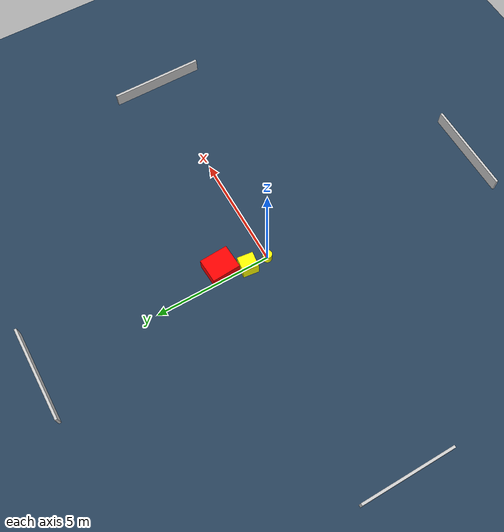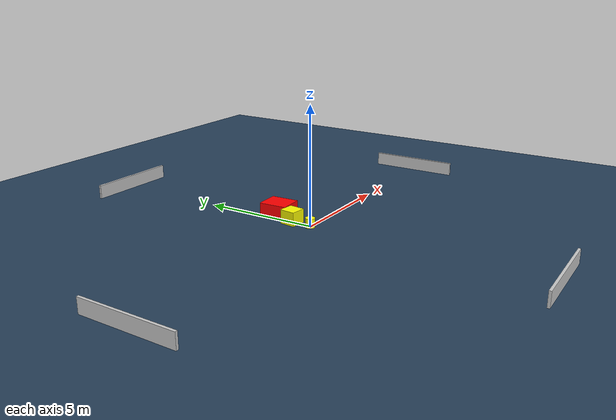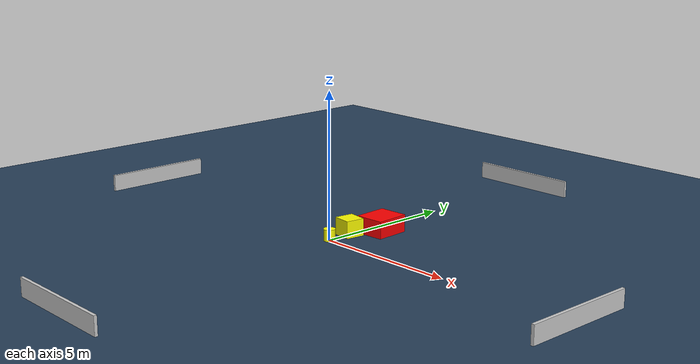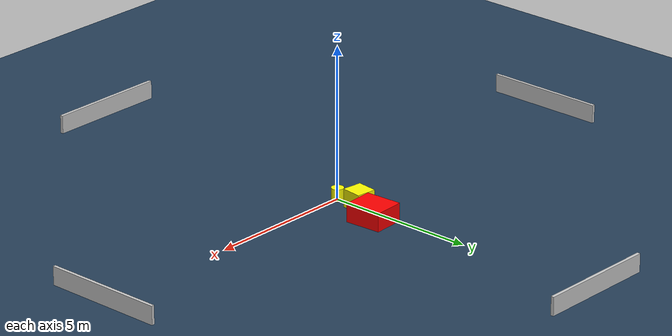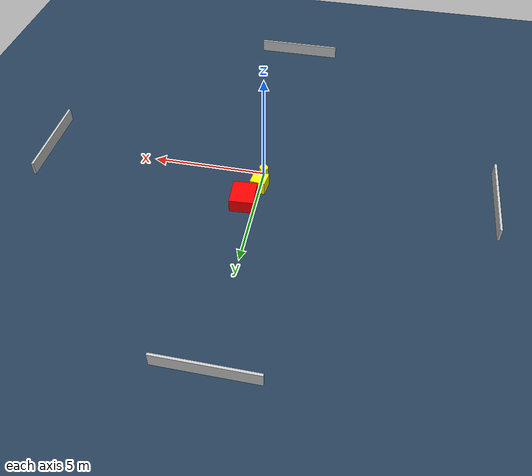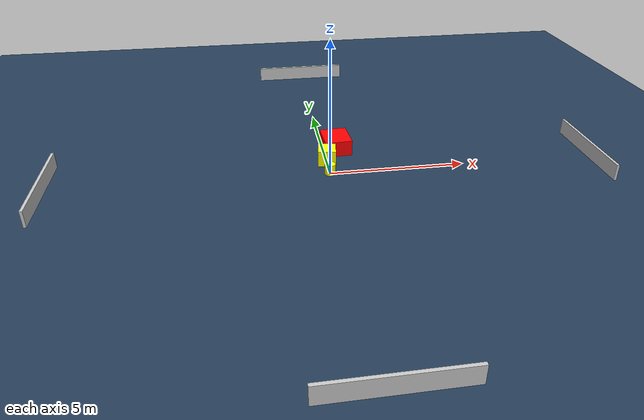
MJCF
<?xml version="1.0" ?>
<mujoco model="generated_environment">
  <option timestep="0.01" integrator="RK4" cone="elliptic"/>
  <default>
    <geom density="1"/>
  </default>
  <asset>
    <texture builtin="gradient" height="3072" name="skybox" rgb1="0.3 0.5 0.7" rgb2="0 0 0" type="skybox" width="512"/>
    <texture builtin="checker" height="300" name="groundplane" rgb1="0.2 0.3 0.4" rgb2="0.1 0.2 0.3" type="2d" width="300"/>
    <material name="groundplane" reflectance="0.2" texrepeat="5 5" texture="groundplane"/>
  </asset>
  <worldbody>
    <light dir="0 0 -1" directional="true" pos="0 0 1.5"/>
    <geom condim="3" friction="0.5 0.005 0.001" material="groundplane" name="floor" pos="0 0 0" size="0 0 0.05" type="plane"/>
    <body name="walls">
      <geom name="wall_1" condim="4" pos="-10.0 0.0 0.3" rgba="0.800000011920929 0.800000011920929 0.800000011920929 1.0" size="0.05 2.0 0.3" type="box"/>
      <geom name="wall_2" condim="4" pos="10.0 0.0 0.3" rgba="0.800000011920929 0.800000011920929 0.800000011920929 1.0" size="0.05 2.0 0.3" type="box"/>
      <geom name="wall_3" condim="4" pos="0.0 -10.0 0.3" rgba="0.800000011920929 0.800000011920929 0.800000011920929 1.0" size="2.0 0.05 0.3" type="box"/>
      <geom name="wall_4" condim="4" pos="0.0 10.0 0.3" rgba="0.800000011920929 0.800000011920929 0.800000011920929 1.0" size="2.0 0.05 0.3" type="box"/>
    </body>
    <body name="robot">
      <joint name="joint_x" type="slide" pos="0 0 0" axis="1 0 0"/>
      <joint name="joint_y" type="slide" pos="0 0 0" axis="0 1 0"/>
      <geom name="robot" type="cylinder" pos="0.0 0.0 0.2" size="0.2 0.2 0.0" mass="5.0" friction="1.0 0.005 0.0001" condim="4" rgba="1.0 1.0 0.0 1.0"/>
    </body>
    <body name="obstacle_1_movable">
      <geom name="obstacle_1_movable" condim="4" pos="0.01214170767576068 0.8891571480291144 0.3" euler="0 0 263.16129108681736" friction="0.0 0.005 0.001" rgba="1.0 1.0 0.0 1.0" size="0.33819807612391656 0.33029837968187914 0.3" type="box" mass="0.1"/>
      <joint type="free"/>
    </body>
    <body name="obstacle_2_static">
      <geom name="obstacle_2_static" condim="4" pos="0.5057187881981882 1.8889897420678783 0.3" euler="0 0 93.30484293563444" friction="0.0 0.005 0.001" rgba="1.0 0.0 0.0 1.0" size="0.6090750491011157 0.5192590853056647 0.3" type="box"/>
    </body>
  </worldbody>
  <actuator>
    <motor name="actuator_x" joint="joint_x" gear="1" ctrlrange="-1 1"/>
    <motor name="actuator_y" joint="joint_y" gear="1" ctrlrange="-1 1"/>
  </actuator>
</mujoco>
